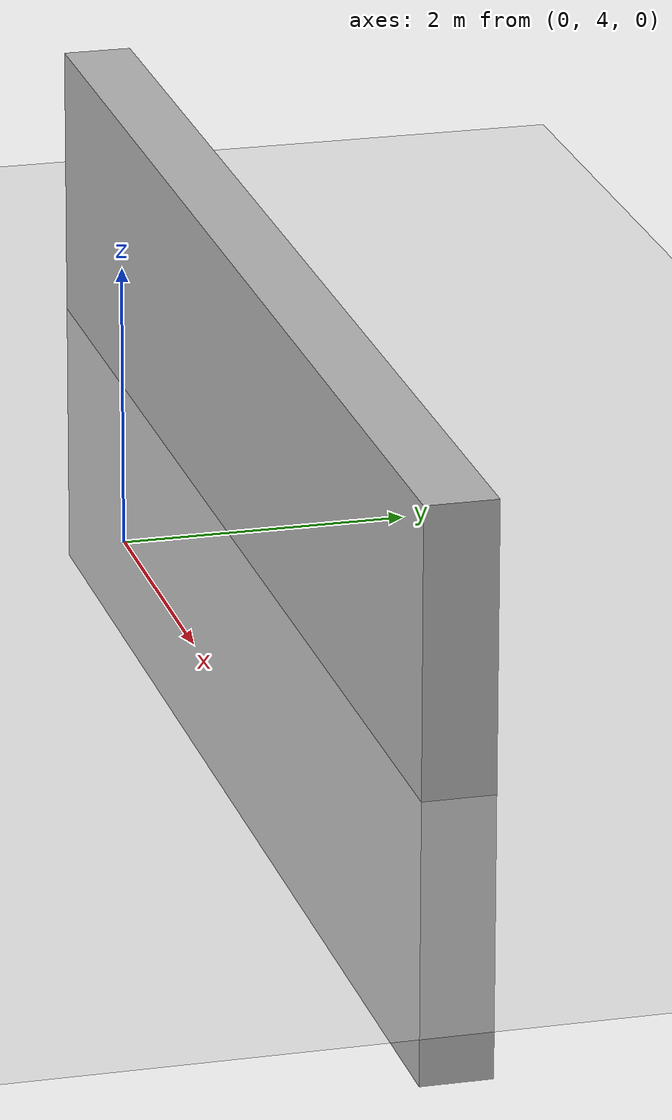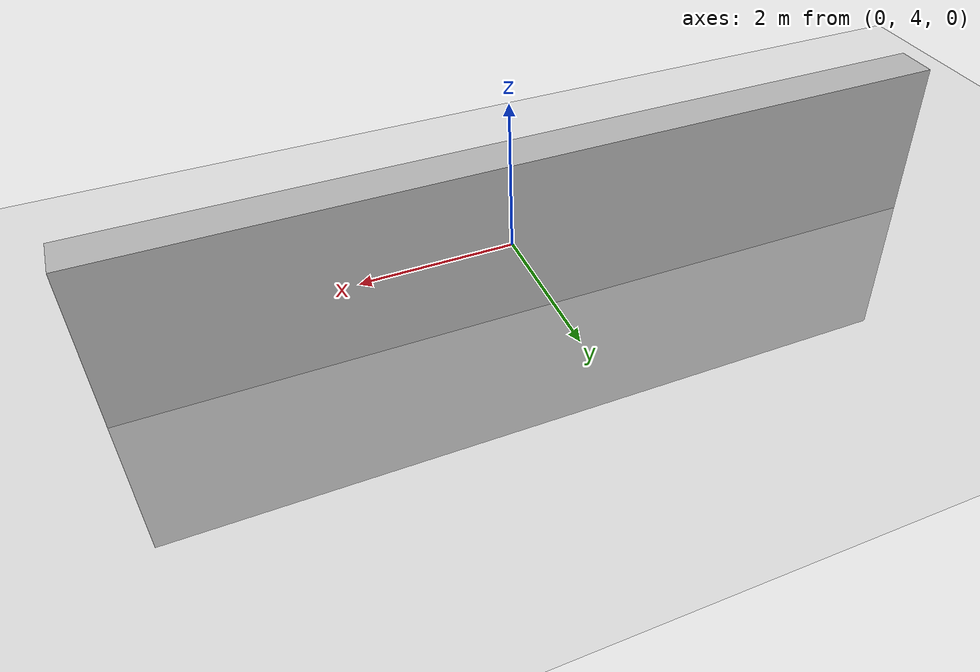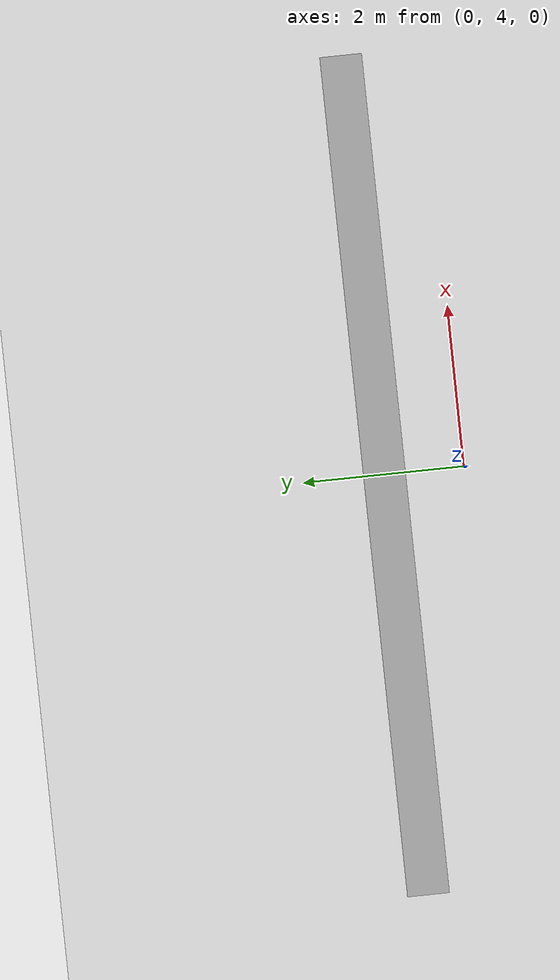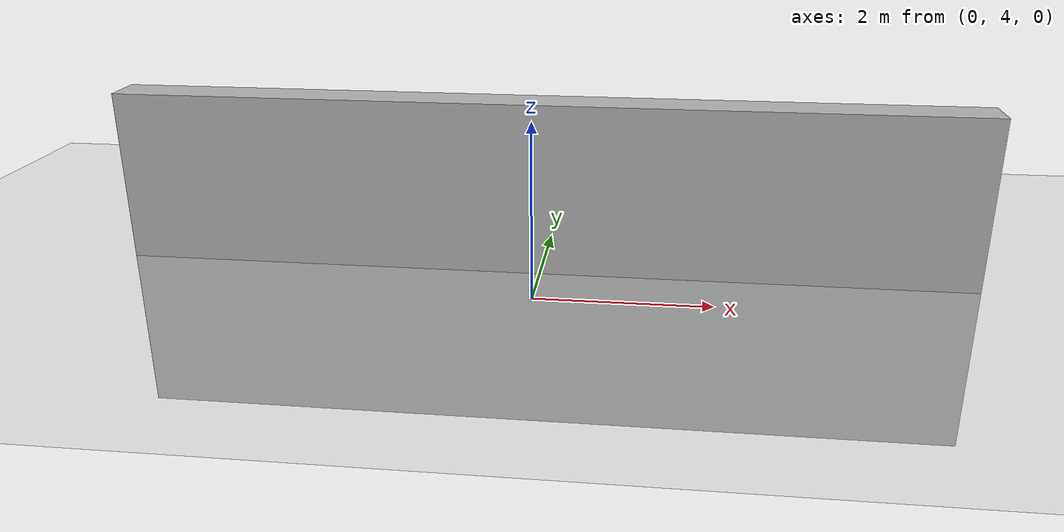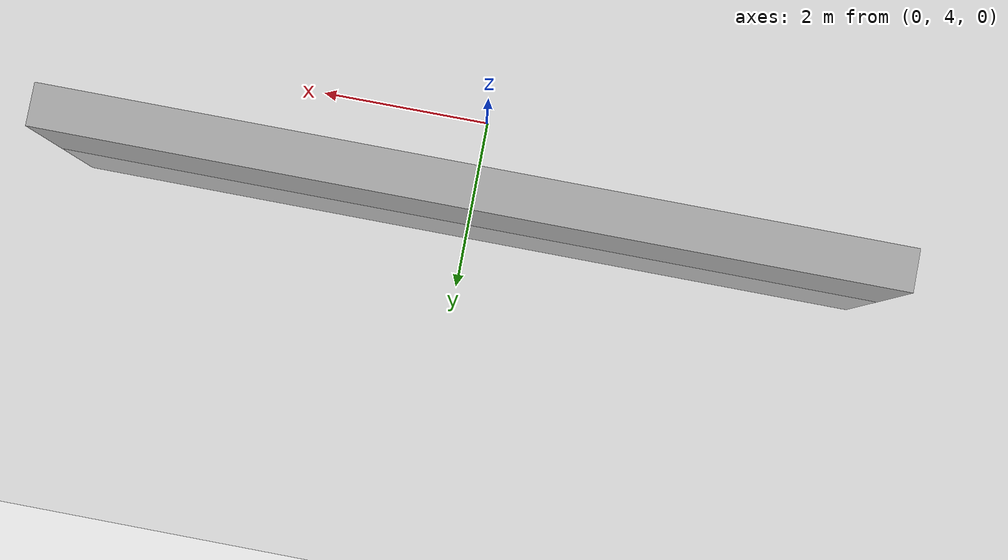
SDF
<?xml version="1.0" ?>
<sdf version="1.6">
  <world name="earthen_heritage_world">
    <!-- Directional Sun Light -->
    <include>
      <uri>model://sun</uri>
    </include>

    <!-- Ground Plane -->
    <include>
      <uri>model://ground_plane</uri>
    </include>

    <!-- Earthen Mudbrick Heritage Wall -->
    <include>
      <uri>model://mudbrick_wall</uri>
      <name>earthen_wall_01</name>
      <pose>0 5 0 0 0 0</pose>
    </include>

    <!-- Physics Engine Setup -->
    <physics type="ode">
      <max_step_size>0.001</max_step_size>
      <real_time_factor>1.0</real_time_factor>
      <real_time_update_rate>1000</real_time_update_rate>
    </physics>
  </world>
</sdf>

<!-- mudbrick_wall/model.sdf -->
<sdf version="1.6">
  <model name="mudbrick_wall">
    <static>true</static>
    <link name="wall_link">
      <collision name="collision">
        <geometry>
          <box>
            <size>10.0 0.5 4.0</size>
          </box>
        </geometry>
      </collision>
      <visual name="visual">
        <geometry>
          <box>
            <size>10.0 0.5 4.0</size>
          </box>
        </geometry>
        <material>
          <script>
            <uri>file://media/materials/scripts/gazebo.material</uri>
            <name>Gazebo/Dirt</name>
          </script>
        </material>
      </visual>
    </link>
  </model>
</sdf>
